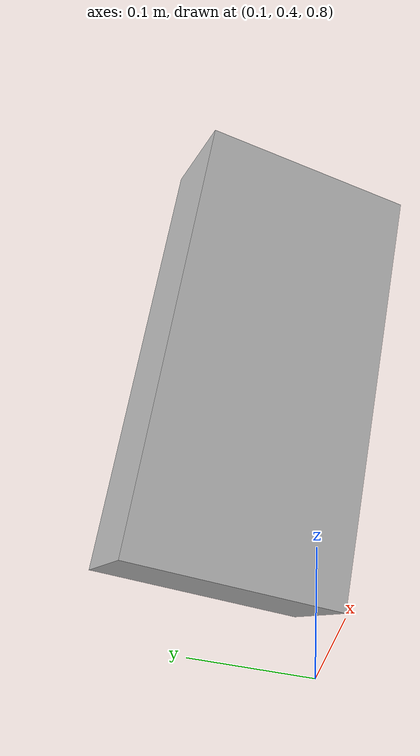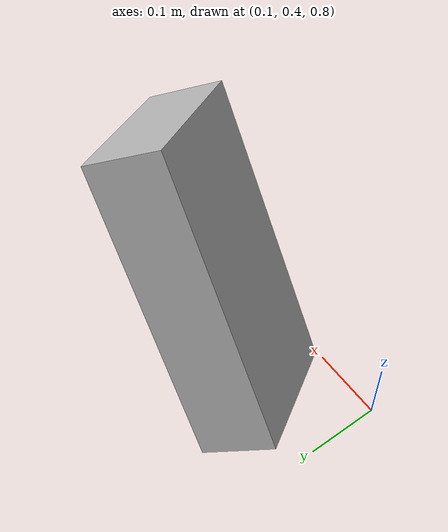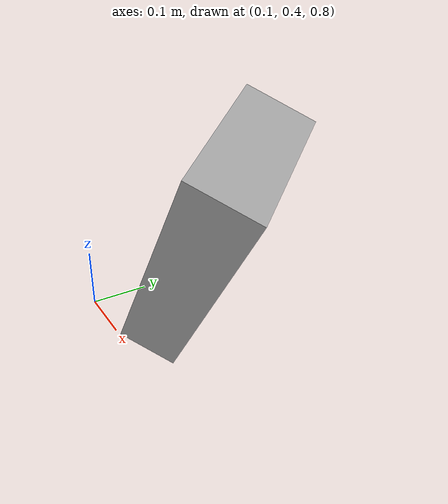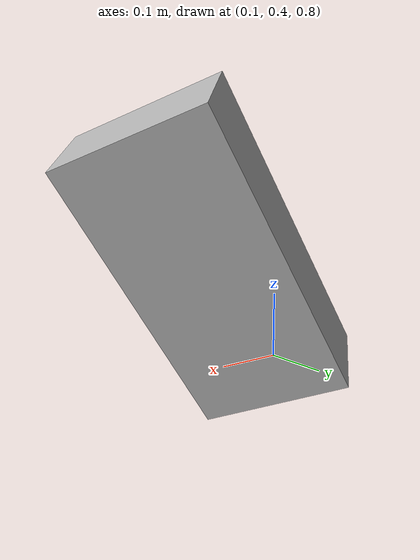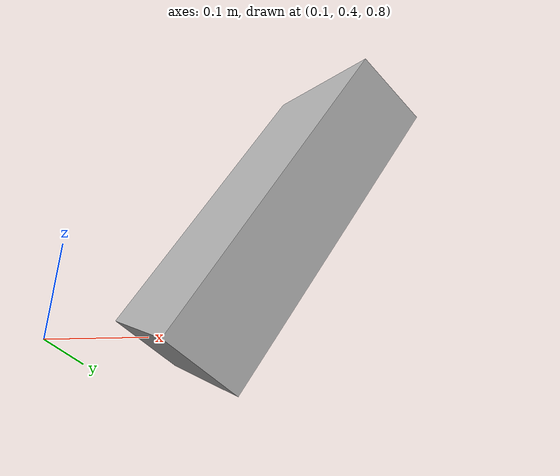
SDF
<?xml version='1.0' encoding='utf-8'?>
<sdf version="1.7">
  <model name="pose_visual_in_frame">
    <frame name="some_frame">
      <pose>0.05 0.1 0.2 0.1 0.2 0.3</pose>
    </frame>
    <link name="link">
      <visual name="link_visual">
        <pose relative_to="some_frame">0.2 0.4 0.8 0.2 0.3 0.4</pose>
        <geometry>
          <box>
            <size>0.1 0.2 0.4</size>
          </box>
        </geometry>
      </visual>
      <collision name="link_collision">
        <geometry>
          <box>
            <size>0.1 0.2 0.4</size>
          </box>
        </geometry>
      </collision>
      <inertial>
        <mass>1.23</mass>
        <inertia>
          <ixx>0.0205</ixx>
          <ixy>0</ixy>
          <ixz>0</ixz>
          <iyy>0.017425</iyy>
          <iyz>0</iyz>
          <izz>0.005125</izz>
        </inertia>
      </inertial>
    </link>
  </model>
</sdf>
